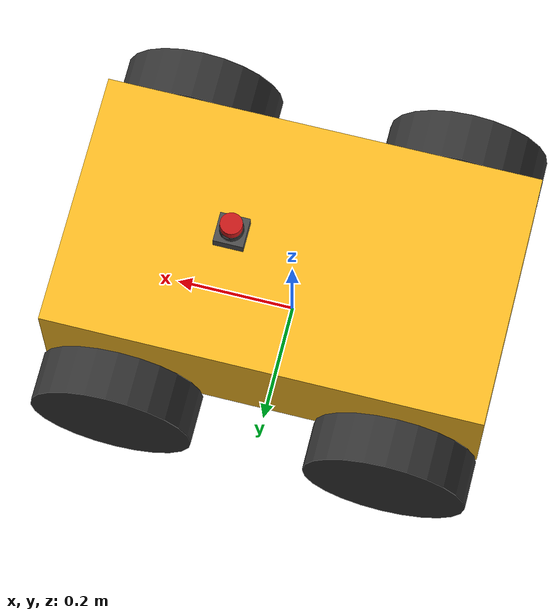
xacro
<?xml version="1.0"?>

<robot name="auto_pro1" xmlns:xacro="http://ros.org/wiki/xacro">

   <!-- Define a number of dimensions using properties -->
   <property name="wheel_offset_x" value="0.228" />  <!--${base_size_x/2}-${wheel_radius}-->
   <property name="wheel_offset_y" value="0.2675" />  <!--${base_size_y/2}++${wheel_length/2}+0.015-->
   <property name="wheel_offset_z" value="-0.065" />

   <property name="laser_offset_x" value="0.10" />
   <property name="laser_offset_y" value="0.0" />
   <property name="laser_offset_z" value="0.10" />

   <property name="PI" value="3.1415" />

   <!-- Include all component files -->
   <xacro:include filename="$(find autolabor_pro1_description)/urdf/materials.urdf.xacro" />
   <xacro:include filename="$(find autolabor_pro1_description)/urdf/auto_pro1/base.urdf.xacro" />
   <xacro:include filename="$(find autolabor_pro1_description)/urdf/sensors/laser.urdf.xacro" />

   <!-- Add the base & wheels -->
   <base name="base" color="Goldenrod"/>

   <!-- Attach the laser -->
   <laser parent="base" color="DarkGrey">
      <origin xyz="${laser_offset_x} ${laser_offset_y} ${laser_offset_z}" rpy="0 0 0 " />
   </laser>

</robot>

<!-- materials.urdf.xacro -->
<robot>

  <!-- Put all the color definitions in a separate file -->
  <material name="Black">
    <color rgba="0.2 0.2 0.2 1.0"/>
  </material>

   <material name="TransparentBlack">
    <color rgba="0.2 0.2 0.2 0.8"/>
  </material>

  <material name="Orange">
    <color rgba="1.0  0.55 0.0 1.0"/>
  </material>

  <material name="Grey">
    <color rgba="0.7 0.7 0.7 1.0"/>
  </material>

  <material name="DarkGrey">
    <color rgba="0.3 0.3 0.3 1.0"/>
  </material>

  <material name="Red">
    <color rgba="0.8 0.0 0.0 1.0"/>
  </material>

  <material name="White">
    <color rgba="1.0 1.0 1.0 1.0"/>
  </material>

  <material name="OffWhite">
    <color rgba="0.8 0.8 0.8 1.0"/>
  </material>

  <material name="Blue">
    <color rgba="0.0 0.0 0.8 1.0"/>
  </material>

  <material name="Green">
    <color rgba="0.0 0.8 0.0 1.0"/>
  </material>

  <material name="TransparentGreen">
    <color rgba="0.0 0.8 0.0 0.5"/>
  </material>

  <material name = "Goldenrod">
    <color rgba = "1.0 0.75 0.145 1.0" />
  </material>

</robot>

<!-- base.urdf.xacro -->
<robot name="base" xmlns:xacro="http://ros.org/wiki/xacro">

  <!-- Define a number of dimensions using properties -->
  <property name="base_size_x" value="0.726" />
  <property name="base_size_y" value="0.425" />
  <property name="base_size_z" value="0.20" />
  <property name="wheel_offset_x" value="0.228" />  <!--${base_size_x/2}-${wheel_radius}-->
  <property name="wheel_offset_y" value="0.2675" />  <!--${base_size_y/2}++${wheel_length/2}+0.015-->
  <property name="wheel_offset_z" value="-0.065" />  <!--${base_size_z/2}-${wheel_radius}+0.1-->
  <property name="wheel_radius" value="0.135" />
  <property name="PI" value="3.1415" />

  <xacro:include filename="$(find autolabor_pro1_description)/urdf/auto_pro1/wheel.urdf.xacro" />

  <!-- The base xacro macro -->
  <macro name="base" params="name color">
    <link name="${name}_link">
      <visual>
        <origin xyz="0 0 0" rpy="0 0 0" />
        <geometry>
          <box size="${base_size_x} ${base_size_y} ${base_size_z}" />
        </geometry>
        <material name="${color}" />
      </visual>
      <collision>
        <origin xyz="0 0 0" rpy="0 0 0" />
        <geometry>
          <box size="${base_size_x} ${wheel_offset_y*2 + wheel_length} ${base_size_z}" />
        </geometry>
      </collision>
    </link>
  </macro>

  <link name="base_footprint">
      <visual>
        <origin xyz="0 0 0" rpy="0 0 0" />
        <geometry>
          <box size="0.05 0.05 0.001" />
        </geometry>
        <material name="TransparentGreen" />
      </visual>
  </link>

  <joint name="base_joint" type="fixed">
    <origin xyz="0 0 ${wheel_radius - wheel_offset_z}" rpy="0 0 0" />  <!--${wheel_radius + wheel_offset_z}-->
    <parent link="base_footprint"/>
    <child link="base_link" />
  </joint>

  <!-- Add the drive wheels -->
   <wheel parent="base" suffix="l1"  color="Black">
      <origin xyz="${wheel_offset_x} ${wheel_offset_y} ${wheel_offset_z}" rpy="${PI/2} 0 0 " />
   </wheel>
   <wheel parent="base" suffix="l2"  color="Black">
      <origin xyz="${-wheel_offset_x} ${wheel_offset_y} ${wheel_offset_z}" rpy="${PI/2} 0 0 " />
   </wheel>
   <wheel parent="base" suffix="r1"  color="Black">
      <origin xyz="${wheel_offset_x} ${-wheel_offset_y} ${wheel_offset_z}" rpy="${-PI/2} 0 0 " />
   </wheel>
   <wheel parent="base" suffix="r2"  color="Black">
      <origin xyz="${-wheel_offset_x} ${-wheel_offset_y} ${wheel_offset_z}" rpy="${-PI/2} 0 0 " />
   </wheel>

</robot>

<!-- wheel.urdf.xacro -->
<robot name="wheel" xmlns:xacro="http://ros.org/wiki/xacro">

  <!-- Define a number of dimensions using properties -->
  <property name="wheel_length" value="0.080" />
  <property name="wheel_radius" value="0.135" />

  <property name="PI" value="3.1415" />

  <!-- define a wheel -->
  <macro name="wheel" params="suffix parent color *origin">
    <joint name="${parent}_${suffix}_wheel_joint" type="continuous">
      <xacro:insert_block name="origin" />
      <axis xyz="0 0 1" />
      <limit effort="100" velocity="100"/>
      <safety_controller k_velocity="10" />
      <parent link="${parent}_link"/>
      <child link="${parent}_${suffix}_wheel_link"/>
    </joint>

    <link name="${parent}_${suffix}_wheel_link">
      <visual>
        <origin xyz="0 0 0" rpy="0 0 0" />
        <geometry>
          <cylinder radius="${wheel_radius}" length="${wheel_length}"/>
        </geometry>
        <material name="${color}" />
      </visual>
    </link>
  </macro>

</robot>

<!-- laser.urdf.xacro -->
<robot name="laser" xmlns:xacro="http://ros.org/wiki/xacro">

  <!-- A box-and-cylinder model of the Hokuyo URG-04LX-UG01 laser scanner -->

  <!--Define the default_inertial macro-->
  <macro name="default_inertial" params="mass">
    <inertial>
	  <inertia ixx="0.001" ixy="0" ixz="0" iyy="0.001" iyz="0" izz="0.001" />
	  <mass value="${mass}" />
	</inertial>
  </macro>

  <!-- Define the laser macro -->
  <macro name="laser" params="parent color *origin">
    <joint name="${parent}_laser_bottom_joint" type="fixed">
      <xacro:insert_block name="origin" />
      <parent link="${parent}_link"/>
      <child link="base_laser_bottom"/>
    </joint>

   <link name="base_laser_bottom">
	 <visual>
        <origin xyz="0 0 0" rpy="0 0 0" />
        <geometry>
          <box size="0.05 0.05 0.041" />
        </geometry>
       <material name="${color}" />
     </visual>
     <collision>
        <origin xyz="0 0 0" rpy="0 0 0" />
      <geometry>
        <box size="0.05 0.05 0.041" />
      </geometry>
     </collision>
	 <default_inertial mass="0.1"/>
   </link>

   <link name="base_laser_middle">
	 <visual>
        <origin xyz="0 0 0" rpy="0 0 0" />
		<geometry>
          <cylinder length="0.0115" radius=".02"/>
        </geometry>
        <material name="dark_grey">
           <color rgba="0.2 0.2 0.2 1.0"/>
        </material>
     </visual>
     <collision>
        <origin xyz="0 0 0" rpy="0 0 0" />
		 <geometry>
          <cylinder length="0.0115" radius=".02"/>
         </geometry>
     </collision>
	 <default_inertial mass="0.1"/>
   </link>

   <joint name="base_laser_middle_joint" type="fixed">
     <parent link="base_laser_bottom"/>
     <child link="base_laser_middle" />
     <origin xyz="0 0 0.02625" rpy="0 0 0" />
   </joint>

   <link name="base_laser">
	 <visual>
        <origin xyz="0 0 0" rpy="0 0 0" />
		<geometry>
          <cylinder length="0.0175" radius=".0185"/>
        </geometry>
        <material name="red">
           <color rgba="0.8 0.1 0.1 1.0"/>
        </material>
     </visual>
     <collision>
        <origin xyz="0 0 0" rpy="0 0 0" />
		 <geometry>
          <cylinder length="0.0175" radius=".0185"/>
         </geometry>
       </collision>
	 <default_inertial mass="0.1"/>
   </link>

   <joint name="base_laser_joint" type="fixed">
     <parent link="base_laser_middle"/>
     <child link="base_laser" />
     <origin xyz="0 0 0.0145" rpy="0 0 0" />
   </joint>

  </macro>

 </robot>
